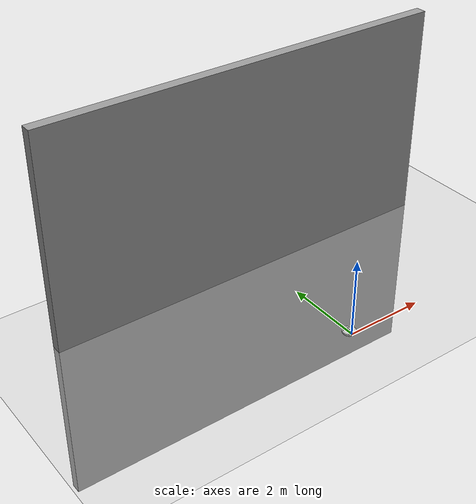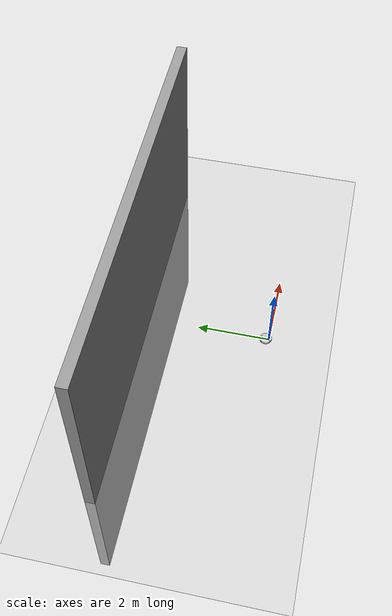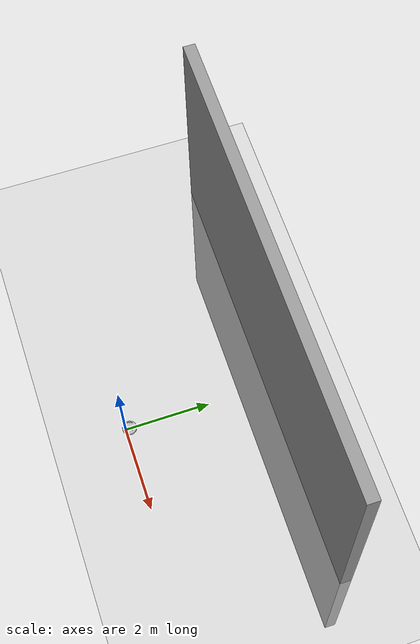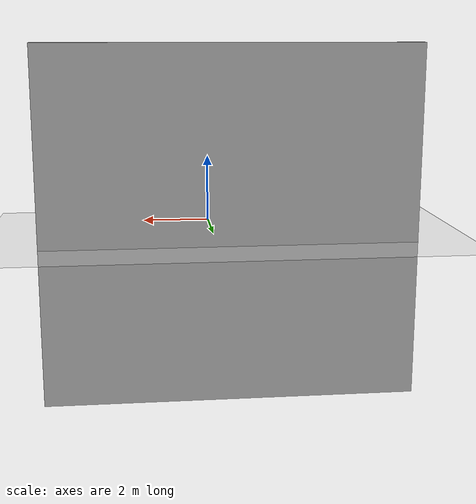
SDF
<sdf version="1.7">
 <world name="default">
  <light name="sun" type="directional">
   <pose>0 0 10 0 -0 0</pose>
   <diffuse>0.8 0.8 0.8 1</diffuse>
   <specular>0.2 0.2 0.2 1</specular>
   <attenuation>
    <range>1000</range>
    <constant>0.9</constant>
    <linear>0.01</linear>
    <quadratic>0.001</quadratic>
   </attenuation>
   <direction>-0.5 0.1 -0.9</direction>
   <spot><inner_angle>0</inner_angle><outer_angle>0</outer_angle><falloff>0</falloff></spot>
  </light>
  <model name="ground_plane">
   <static>1</static>
   <link name="link">
    <collision name="collision">
     <geometry><plane><normal>0 0 1</normal><size>100 100</size></plane></geometry>
     <surface>
      <contact><collide_bitmask>65535</collide_bitmask></contact>
      <friction><ode><mu>100</mu><mu2>50</mu2></ode></friction>
     </surface>
    </collision>
    <visual name="visual">
     <cast_shadows>0</cast_shadows>
     <geometry><plane><normal>0 0 1</normal><size>100 100</size></plane></geometry>
     <material>
      <script><uri>file://media/materials/scripts/gazebo.material</uri><name>Gazebo/Grey</name></script>
     </material>
    </visual>
   </link>
  </model>
  <gravity>0 0 -9.8</gravity>
  <magnetic_field>6e-06 2.3e-05 -4.2e-05</magnetic_field>
  <atmosphere type="adiabatic"/>
  <physics type="ode">
   <max_step_size>0.001</max_step_size>
   <real_time_factor>1</real_time_factor>
   <real_time_update_rate>1000</real_time_update_rate>
  </physics>
  <scene><ambient>0.4 0.4 0.4 1</ambient><background>0.7 0.7 0.7 1</background><shadows>1</shadows></scene>
  <audio><device>default</device></audio>
  <spherical_coordinates>
   <surface_model>EARTH_WGS84</surface_model>
   <latitude_deg>0</latitude_deg>
   <longitude_deg>0</longitude_deg>
   <elevation>0</elevation>
   <heading_deg>0</heading_deg>
  </spherical_coordinates>
  <model name="create">
   <link name="base">
    <inertial>
     <pose>0.001453 -0.000453 0.029787 0 -0 0</pose>
     <inertia>
      <ixx>0.05864</ixx>
      <ixy>0.000124</ixy>
      <ixz>0.000615</ixz>
      <iyy>0.058786</iyy>
      <iyz>1.4e-05</iyz>
      <izz>1.53244</izz>
     </inertia>
     <mass>2.234</mass>
    </inertial>
    <collision name="base_collision">
     <pose>0 0 0.0478 0 -0 0</pose>
     <geometry><cylinder><radius>0.016495</radius><length>0.061163</length></cylinder></geometry>
    </collision>
    <visual name="base_visual">
     <pose>0 0 0.0478 0 -0 0</pose>
     <geometry><mesh><uri>model://create/meshes/create_body.dae</uri></mesh></geometry>
    </visual>
    <collision name="front_wheel_collision">
     <pose>0.13 0 0.017 -0 1.5707 1.5707</pose>
     <geometry><sphere><radius>0.018</radius></sphere></geometry>
     <surface>
      <friction><ode><mu>0</mu><mu2>0</mu2><fdir1>0 0 0</fdir1><slip1>0</slip1><slip2>0</slip2></ode></friction>
     </surface>
    </collision>
    <visual name="front_wheel_visual">
     <pose>0.13 0 0.017 -0 1.5707 1.5707</pose>
     <geometry><sphere><radius>0.009</radius></sphere></geometry>
    </visual>
    <collision name="rear_wheel_collision">
     <pose>-0.13 0 0.017 -0 1.5707 1.5707</pose>
     <geometry><sphere><radius>0.015</radius></sphere></geometry>
     <surface>
      <friction><ode><mu>0</mu><mu2>0</mu2><fdir1>0 0 0</fdir1><slip1>0</slip1><slip2>0</slip2></ode></friction>
     </surface>
    </collision>
    <visual name="rear_wheel_visual">
     <pose>-0.13 0 0.017 -0 1.5707 1.5707</pose>
     <geometry><sphere><radius>0.0075</radius></sphere></geometry>
    </visual>
    <sensor name="left_cliff_sensor" type="ray">
     <pose>0.07 0.14 0.027 0 1.57079 0</pose>
     <ray>
      <scan>
       <horizontal>
        <samples>1</samples>
        <resolution>1</resolution>
        <min_angle>0</min_angle>
        <max_angle>0</max_angle>
       </horizontal>
       <vertical><samples>1</samples><min_angle>0</min_angle><max_angle>0</max_angle></vertical>
      </scan>
      <range><min>0.01</min><max>0.04</max><resolution>0.1</resolution></range>
     </ray>
    </sensor>
    <sensor name="leftfront_cliff_sensor" type="ray">
     <pose>0.15 0.04 0.027 0 1.57079 0</pose>
     <ray>
      <scan>
       <horizontal>
        <samples>1</samples>
        <resolution>1</resolution>
        <min_angle>0</min_angle>
        <max_angle>0</max_angle>
       </horizontal>
       <vertical><samples>1</samples><min_angle>0</min_angle><max_angle>0</max_angle></vertical>
      </scan>
      <range><min>0.01</min><max>0.04</max><resolution>0.1</resolution></range>
     </ray>
    </sensor>
    <sensor name="right_cliff_sensor" type="ray">
     <pose>0.07 -0.14 0.027 0 1.57079 0</pose>
     <ray>
      <scan>
       <horizontal>
        <samples>1</samples>
        <resolution>1</resolution>
        <min_angle>0</min_angle>
        <max_angle>0</max_angle>
       </horizontal>
       <vertical><samples>1</samples><min_angle>0</min_angle><max_angle>0</max_angle></vertical>
      </scan>
      <range><min>0.01</min><max>0.04</max><resolution>0.1</resolution></range>
     </ray>
    </sensor>
    <sensor name="rightfront_cliff_sensor" type="ray">
     <pose>0.15 -0.04 0.027 0 1.57079 0</pose>
     <ray>
      <scan>
       <horizontal>
        <samples>1</samples>
        <resolution>1</resolution>
        <min_angle>0</min_angle>
        <max_angle>0</max_angle>
       </horizontal>
       <vertical><samples>1</samples><min_angle>0</min_angle><max_angle>0</max_angle></vertical>
      </scan>
      <range><min>0.01</min><max>0.04</max><resolution>0.1</resolution></range>
     </ray>
    </sensor>
    <sensor name="wall_sensor" type="ray">
     <pose>0.09 -0.12 0.059 0 0 -1</pose>
     <ray>
      <scan>
       <horizontal>
        <samples>1</samples>
        <resolution>1</resolution>
        <min_angle>0</min_angle>
        <max_angle>0</max_angle>
       </horizontal>
       <vertical><samples>1</samples><min_angle>0</min_angle><max_angle>0</max_angle></vertical>
      </scan>
      <range><min>0.016</min><max>0.04</max><resolution>0.1</resolution></range>
     </ray>
    </sensor>
   </link>
   <link name="left_wheel">
    <pose>0 0.13 0.032 0 -0 0</pose>
    <inertial>
     <inertia><ixx>0.001</ixx><ixy>0</ixy><ixz>0</ixz><iyy>0.001</iyy><iyz>0</iyz><izz>0.001</izz></inertia>
     <mass>0.01</mass>
    </inertial>
    <collision name="collision">
     <pose>0 0 0 -0 1.5707 1.5707</pose>
     <geometry><cylinder><radius>0.033</radius><length>0.023</length></cylinder></geometry>
     <surface>
      <friction><ode><mu>10</mu><mu2>10</mu2><fdir1>0 0 0</fdir1><slip1>0</slip1><slip2>0</slip2></ode></friction>
     </surface>
    </collision>
    <visual name="visual">
     <pose>0 0 0 -0 1.5707 1.5707</pose>
     <geometry><cylinder><radius>0.033</radius><length>0.023</length></cylinder></geometry>
    </visual>
   </link>
   <link name="right_wheel">
    <pose>0 -0.13 0.032 0 -0 0</pose>
    <inertial>
     <inertia><ixx>0.001</ixx><ixy>0</ixy><ixz>0</ixz><iyy>0.001</iyy><iyz>0</iyz><izz>0.001</izz></inertia>
     <mass>0.01</mass>
    </inertial>
    <collision name="collision">
     <pose>0 0 0 -0 1.5707 1.5707</pose>
     <geometry><cylinder><radius>0.033</radius><length>0.023</length></cylinder></geometry>
     <surface>
      <friction><ode><mu>10</mu><mu2>10</mu2><fdir1>0 0 0</fdir1><slip1>0</slip1><slip2>0</slip2></ode></friction>
     </surface>
    </collision>
    <visual name="visual">
     <pose>0 0 0 -0 1.5707 1.5707</pose>
     <geometry><cylinder><radius>0.033</radius><length>0.023</length></cylinder></geometry>
    </visual>
   </link>
   <joint name="left_wheel" type="revolute">
    <parent>base</parent>
    <child>left_wheel</child>
    <axis>
     <xyz expressed_in="__model__">0 1 0</xyz>
     <limit><lower>-1e+16</lower><upper>1e+16</upper></limit>
     <dynamics><spring_reference>0</spring_reference><spring_stiffness>0</spring_stiffness></dynamics>
    </axis>
   </joint>
   <joint name="right_wheel" type="revolute">
    <parent>base</parent>
    <child>right_wheel</child>
    <axis>
     <xyz expressed_in="__model__">0 1 0</xyz>
     <limit><lower>-1e+16</lower><upper>1e+16</upper></limit>
     <dynamics><spring_reference>0</spring_reference><spring_stiffness>0</spring_stiffness></dynamics>
    </axis>
   </joint>
   <pose>-0.003536 0.094209 0 0 -0 0</pose>
  </model>
  <model name="unit_box">
   <pose>-0.374132 3.51353 0.5 0 -0 0</pose>
   <link name="link">
    <inertial>
     <mass>1</mass>
     <inertia>
      <ixx>0.166667</ixx>
      <ixy>0</ixy>
      <ixz>0</ixz>
      <iyy>0.166667</iyy>
      <iyz>0</iyz>
      <izz>0.166667</izz>
     </inertia>
    </inertial>
    <collision name="collision"><geometry><box><size>10.5496 0.268037 10</size></box></geometry></collision>
    <visual name="visual">
     <geometry><box><size>10.5496 0.268037 10</size></box></geometry>
     <material>
      <script><name>Gazebo/Grey</name><uri>file://media/materials/scripts/gazebo.material</uri></script>
     </material>
    </visual>
   </link>
  </model>
 </world>
</sdf>
